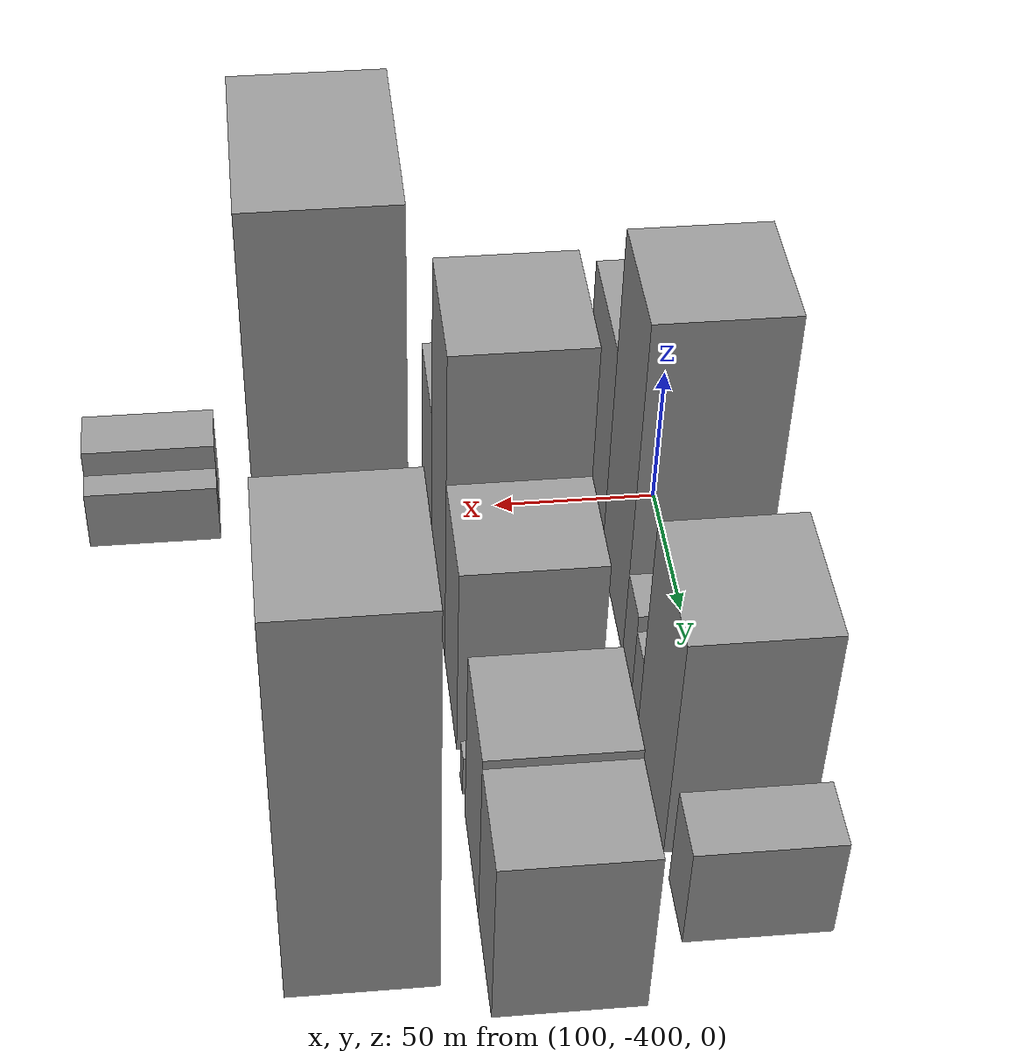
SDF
<sdf version="1.6">
 <world name="default">
  <model name="building_14">
   <static>1</static>
   <pose>100.0000 -395.4743 0 0.000000 0.000000 0.000000</pose>
   <link name="link">
    <pose>0 0 40.50 0 0 0</pose>
    <collision name="collision"><geometry><box><size>40.0000 41.7689 81.0000</size></box></geometry></collision>
    <visual name="visual">
     <cast_shadows>0</cast_shadows>
     <geometry><box><size>40.0000 41.7689 81.0000</size></box></geometry>
     <material>
      <script>
       <uri>model://grey_wall/materials/scripts</uri>
       <uri>model://grey_wall/materials/textures</uri>
       <name>vrc/grey_wall</name>
      </script>
     </material>
    </visual>
   </link>
  </model>
  <model name="building_15">
   <static>1</static>
   <pose>100.0000 -354.0958 0 0.000000 0.000000 0.000000</pose>
   <link name="link">
    <pose>0 0 61.50 0 0 0</pose>
    <collision name="collision"><geometry><box><size>40.0000 40.9882 123.0000</size></box></geometry></collision>
    <visual name="visual">
     <cast_shadows>0</cast_shadows>
     <geometry><box><size>40.0000 40.9882 123.0000</size></box></geometry>
     <material>
      <script>
       <uri>model://grey_wall/materials/scripts</uri>
       <uri>model://grey_wall/materials/textures</uri>
       <name>vrc/grey_wall</name>
      </script>
     </material>
    </visual>
   </link>
  </model>
  <model name="building_16">
   <static>1</static>
   <pose>100.0000 -325.2391 0 0.000000 0.000000 0.000000</pose>
   <link name="link">
    <pose>0 0 16.50 0 0 0</pose>
    <collision name="collision"><geometry><box><size>40.0000 16.7252 33.0000</size></box></geometry></collision>
    <visual name="visual">
     <cast_shadows>0</cast_shadows>
     <geometry><box><size>40.0000 16.7252 33.0000</size></box></geometry>
     <material>
      <script>
       <uri>model://grey_wall/materials/scripts</uri>
       <uri>model://grey_wall/materials/textures</uri>
       <name>vrc/grey_wall</name>
      </script>
     </material>
    </visual>
   </link>
  </model>
  <model name="building_17">
   <static>1</static>
   <pose>100.0000 -310.9203 0 0.000000 0.000000 0.000000</pose>
   <link name="link">
    <pose>0 0 13.50 0 0 0</pose>
    <collision name="collision"><geometry><box><size>40.0000 11.9123 27.0000</size></box></geometry></collision>
    <visual name="visual">
     <cast_shadows>0</cast_shadows>
     <geometry><box><size>40.0000 11.9123 27.0000</size></box></geometry>
     <material>
      <script>
       <uri>model://grey_wall/materials/scripts</uri>
       <uri>model://grey_wall/materials/textures</uri>
       <name>vrc/grey_wall</name>
      </script>
     </material>
    </visual>
   </link>
  </model>
  <model name="building_18">
   <static>1</static>
   <pose>100.0000 -282.7049 0 0.000000 0.000000 0.000000</pose>
   <link name="link">
    <pose>0 0 40.50 0 0 0</pose>
    <collision name="collision"><geometry><box><size>40.0000 44.5185 81.0000</size></box></geometry></collision>
    <visual name="visual">
     <cast_shadows>0</cast_shadows>
     <geometry><box><size>40.0000 44.5185 81.0000</size></box></geometry>
     <material>
      <script>
       <uri>model://grey_wall/materials/scripts</uri>
       <uri>model://grey_wall/materials/textures</uri>
       <name>vrc/grey_wall</name>
      </script>
     </material>
    </visual>
   </link>
  </model>
  <model name="building_19">
   <static>1</static>
   <pose>100.0000 -241.1788 0 0.000000 0.000000 0.000000</pose>
   <link name="link">
    <pose>0 0 18.00 0 0 0</pose>
    <collision name="collision"><geometry><box><size>40.0000 20.5336 36.0000</size></box></geometry></collision>
    <visual name="visual">
     <cast_shadows>0</cast_shadows>
     <geometry><box><size>40.0000 20.5336 36.0000</size></box></geometry>
     <material>
      <script>
       <uri>model://grey_wall/materials/scripts</uri>
       <uri>model://grey_wall/materials/textures</uri>
       <name>vrc/grey_wall</name>
      </script>
     </material>
    </visual>
   </link>
  </model>
  <model name="building_64">
   <static>1</static>
   <pose>152.0000 -395.3707 0 0.000000 0.000000 0.000000</pose>
   <link name="link">
    <pose>0 0 28.50 0 0 0</pose>
    <collision name="collision"><geometry><box><size>40.0000 33.8123 57.0000</size></box></geometry></collision>
    <visual name="visual">
     <cast_shadows>0</cast_shadows>
     <geometry><box><size>40.0000 33.8123 57.0000</size></box></geometry>
     <material>
      <script>
       <uri>model://grey_wall/materials/scripts</uri>
       <uri>model://grey_wall/materials/textures</uri>
       <name>vrc/grey_wall</name>
      </script>
     </material>
    </visual>
   </link>
  </model>
  <model name="building_65">
   <static>1</static>
   <pose>152.0000 -357.4929 0 0.000000 0.000000 0.000000</pose>
   <link name="link">
    <pose>0 0 57.00 0 0 0</pose>
    <collision name="collision"><geometry><box><size>40.0000 41.9434 114.0000</size></box></geometry></collision>
    <visual name="visual">
     <cast_shadows>0</cast_shadows>
     <geometry><box><size>40.0000 41.9434 114.0000</size></box></geometry>
     <material>
      <script>
       <uri>model://grey_wall/materials/scripts</uri>
       <uri>model://grey_wall/materials/textures</uri>
       <name>vrc/grey_wall</name>
      </script>
     </material>
    </visual>
   </link>
  </model>
  <model name="building_66">
   <static>1</static>
   <pose>152.0000 -319.0967 0 0.000000 0.000000 0.000000</pose>
   <link name="link">
    <pose>0 0 34.50 0 0 0</pose>
    <collision name="collision"><geometry><box><size>40.0000 34.8489 69.0000</size></box></geometry></collision>
    <visual name="visual">
     <cast_shadows>0</cast_shadows>
     <geometry><box><size>40.0000 34.8489 69.0000</size></box></geometry>
     <material>
      <script>
       <uri>model://grey_wall/materials/scripts</uri>
       <uri>model://grey_wall/materials/textures</uri>
       <name>vrc/grey_wall</name>
      </script>
     </material>
    </visual>
   </link>
  </model>
  <model name="building_67">
   <static>1</static>
   <pose>152.0000 -288.5084 0 0.000000 0.000000 0.000000</pose>
   <link name="link">
    <pose>0 0 7.50 0 0 0</pose>
    <collision name="collision"><geometry><box><size>40.0000 6.3277 15.0000</size></box></geometry></collision>
    <visual name="visual">
     <cast_shadows>0</cast_shadows>
     <geometry><box><size>40.0000 6.3277 15.0000</size></box></geometry>
     <material>
      <script>
       <uri>model://grey_wall/materials/scripts</uri>
       <uri>model://grey_wall/materials/textures</uri>
       <name>vrc/grey_wall</name>
      </script>
     </material>
    </visual>
   </link>
  </model>
  <model name="building_68">
   <static>1</static>
   <pose>152.0000 -260.9938 0 0.000000 0.000000 0.000000</pose>
   <link name="link">
    <pose>0 0 31.50 0 0 0</pose>
    <collision name="collision"><geometry><box><size>40.0000 34.7015 63.0000</size></box></geometry></collision>
    <visual name="visual">
     <cast_shadows>0</cast_shadows>
     <geometry><box><size>40.0000 34.7015 63.0000</size></box></geometry>
     <material>
      <script>
       <uri>model://grey_wall/materials/scripts</uri>
       <uri>model://grey_wall/materials/textures</uri>
       <name>vrc/grey_wall</name>
      </script>
     </material>
    </visual>
   </link>
  </model>
  <model name="building_69">
   <static>1</static>
   <pose>152.0000 -228.0221 0 0.000000 0.000000 0.000000</pose>
   <link name="link">
    <pose>0 0 30.00 0 0 0</pose>
    <collision name="collision"><geometry><box><size>40.0000 31.2420 60.0000</size></box></geometry></collision>
    <visual name="visual">
     <cast_shadows>0</cast_shadows>
     <geometry><box><size>40.0000 31.2420 60.0000</size></box></geometry>
     <material>
      <script>
       <uri>model://grey_wall/materials/scripts</uri>
       <uri>model://grey_wall/materials/textures</uri>
       <name>vrc/grey_wall</name>
      </script>
     </material>
    </visual>
   </link>
  </model>
  <model name="building_114">
   <static>1</static>
   <pose>204.0000 -396.6261 0 0.000000 0.000000 0.000000</pose>
   <link name="link">
    <pose>0 0 45.00 0 0 0</pose>
    <collision name="collision"><geometry><box><size>40.0000 46.1918 90.0000</size></box></geometry></collision>
    <visual name="visual">
     <cast_shadows>0</cast_shadows>
     <geometry><box><size>40.0000 46.1918 90.0000</size></box></geometry>
     <material>
      <script>
       <uri>model://grey_wall/materials/scripts</uri>
       <uri>model://grey_wall/materials/textures</uri>
       <name>vrc/grey_wall</name>
      </script>
     </material>
    </visual>
   </link>
  </model>
  <model name="building_115">
   <static>1</static>
   <pose>204.0000 -344.7378 0 0.000000 0.000000 0.000000</pose>
   <link name="link">
    <pose>0 0 88.50 0 0 0</pose>
    <collision name="collision"><geometry><box><size>40.0000 57.5848 177.0000</size></box></geometry></collision>
    <visual name="visual">
     <cast_shadows>0</cast_shadows>
     <geometry><box><size>40.0000 57.5848 177.0000</size></box></geometry>
     <material>
      <script>
       <uri>model://grey_wall/materials/scripts</uri>
       <uri>model://grey_wall/materials/textures</uri>
       <name>vrc/grey_wall</name>
      </script>
     </material>
    </visual>
   </link>
  </model>
  <model name="building_116">
   <static>1</static>
   <pose>204.0000 -304.5259 0 0.000000 0.000000 0.000000</pose>
   <link name="link">
    <pose>0 0 22.50 0 0 0</pose>
    <collision name="collision"><geometry><box><size>40.0000 22.8391 45.0000</size></box></geometry></collision>
    <visual name="visual">
     <cast_shadows>0</cast_shadows>
     <geometry><box><size>40.0000 22.8391 45.0000</size></box></geometry>
     <material>
      <script>
       <uri>model://grey_wall/materials/scripts</uri>
       <uri>model://grey_wall/materials/textures</uri>
       <name>vrc/grey_wall</name>
      </script>
     </material>
    </visual>
   </link>
  </model>
  <model name="building_117">
   <static>1</static>
   <pose>204.0000 -280.9907 0 0.000000 0.000000 0.000000</pose>
   <link name="link">
    <pose>0 0 21.00 0 0 0</pose>
    <collision name="collision"><geometry><box><size>40.0000 24.2312 42.0000</size></box></geometry></collision>
    <visual name="visual">
     <cast_shadows>0</cast_shadows>
     <geometry><box><size>40.0000 24.2312 42.0000</size></box></geometry>
     <material>
      <script>
       <uri>model://grey_wall/materials/scripts</uri>
       <uri>model://grey_wall/materials/textures</uri>
       <name>vrc/grey_wall</name>
      </script>
     </material>
    </visual>
   </link>
  </model>
  <model name="building_118">
   <static>1</static>
   <pose>204.0000 -245.9667 0 0.000000 0.000000 0.000000</pose>
   <link name="link">
    <pose>0 0 69.00 0 0 0</pose>
    <collision name="collision"><geometry><box><size>40.0000 45.8169 138.0000</size></box></geometry></collision>
    <visual name="visual">
     <cast_shadows>0</cast_shadows>
     <geometry><box><size>40.0000 45.8169 138.0000</size></box></geometry>
     <material>
      <script>
       <uri>model://grey_wall/materials/scripts</uri>
       <uri>model://grey_wall/materials/textures</uri>
       <name>vrc/grey_wall</name>
      </script>
     </material>
    </visual>
   </link>
  </model>
  <model name="building_161">
   <static>1</static>
   <pose>256.0000 -410.5949 0 0.000000 0.000000 0.000000</pose>
   <link name="link">
    <pose>0 0 15.00 0 0 0</pose>
    <collision name="collision"><geometry><box><size>40.0000 16.9091 30.0000</size></box></geometry></collision>
    <visual name="visual">
     <cast_shadows>0</cast_shadows>
     <geometry><box><size>40.0000 16.9091 30.0000</size></box></geometry>
     <material>
      <script>
       <uri>model://grey_wall/materials/scripts</uri>
       <uri>model://grey_wall/materials/textures</uri>
       <name>vrc/grey_wall</name>
      </script>
     </material>
    </visual>
   </link>
  </model>
  <model name="building_162">
   <static>1</static>
   <pose>256.0000 -397.6101 0 0.000000 0.000000 0.000000</pose>
   <link name="link">
    <pose>0 0 10.50 0 0 0</pose>
    <collision name="collision"><geometry><box><size>40.0000 9.0605 21.0000</size></box></geometry></collision>
    <visual name="visual">
     <cast_shadows>0</cast_shadows>
     <geometry><box><size>40.0000 9.0605 21.0000</size></box></geometry>
     <material>
      <script>
       <uri>model://grey_wall/materials/scripts</uri>
       <uri>model://grey_wall/materials/textures</uri>
       <name>vrc/grey_wall</name>
      </script>
     </material>
    </visual>
   </link>
  </model>
 </world>
</sdf>
